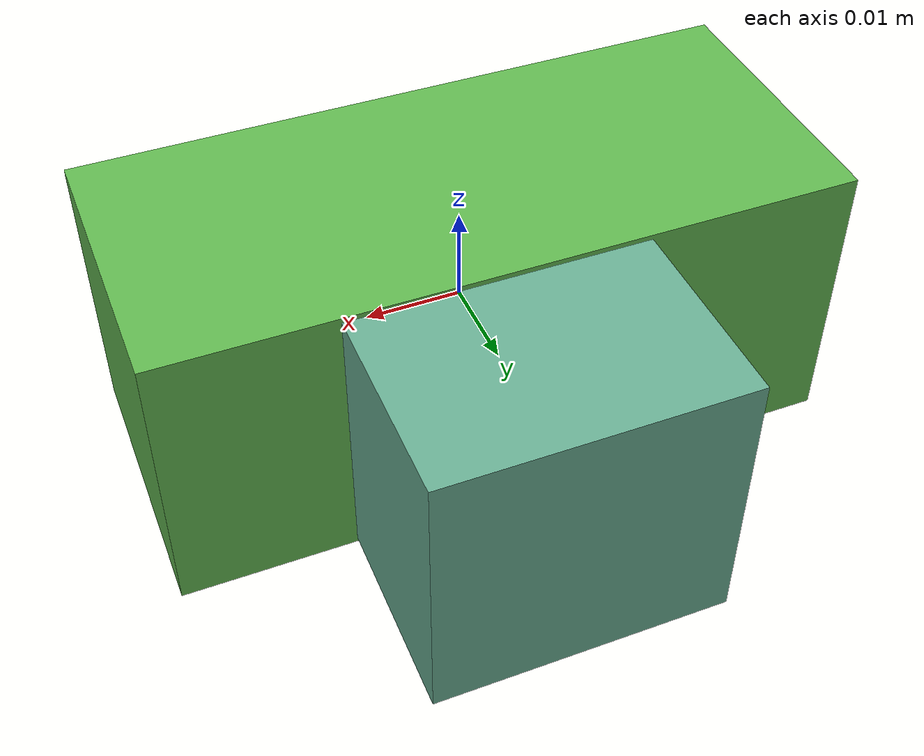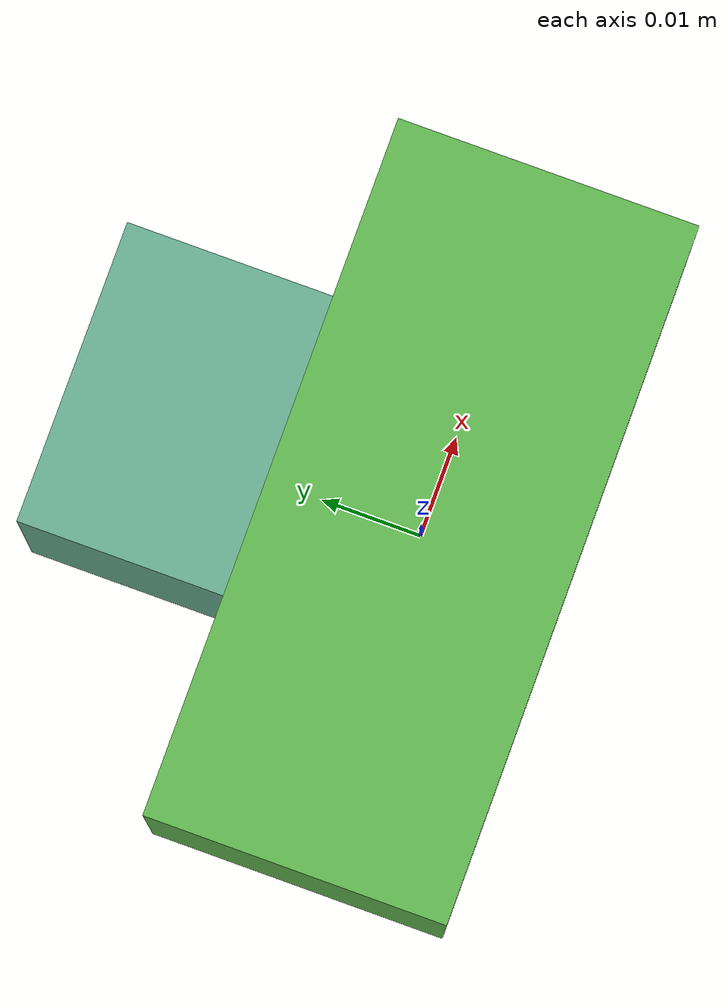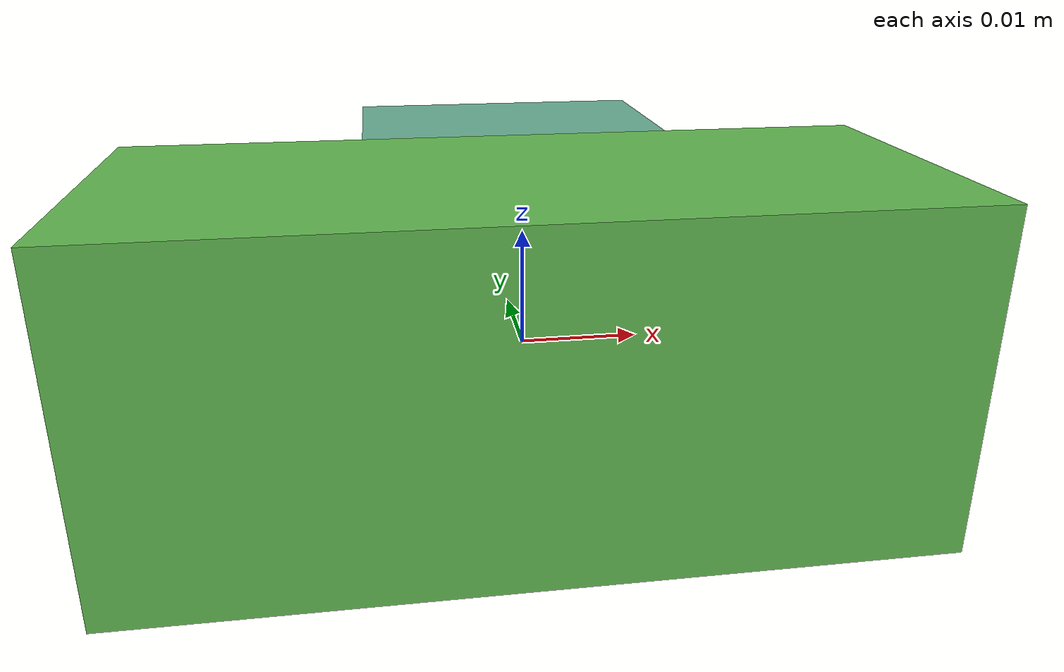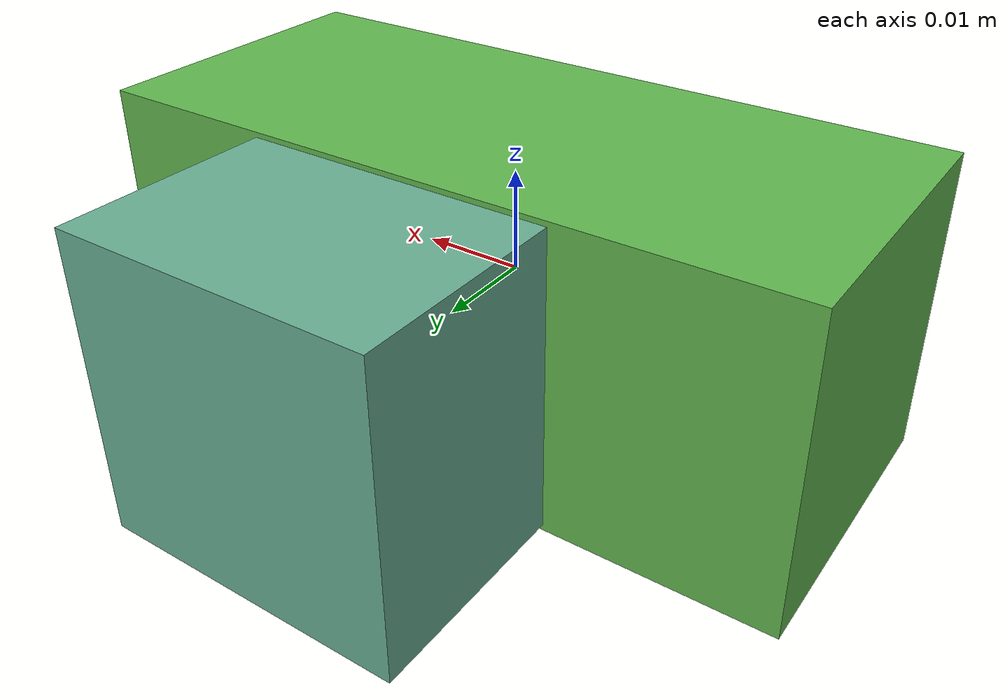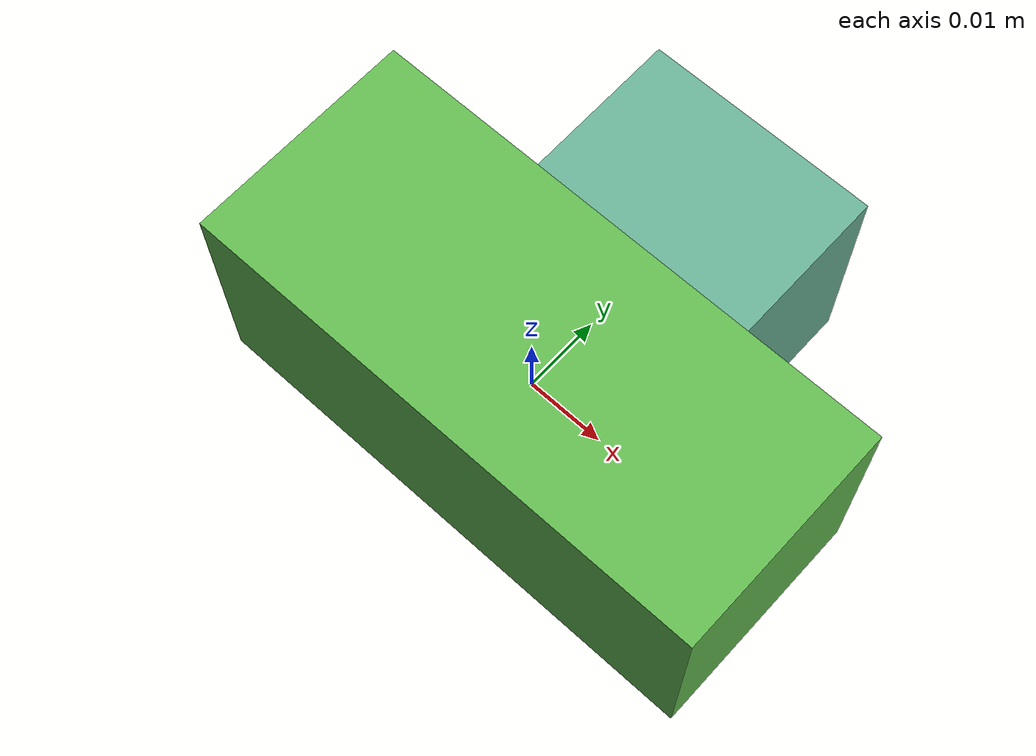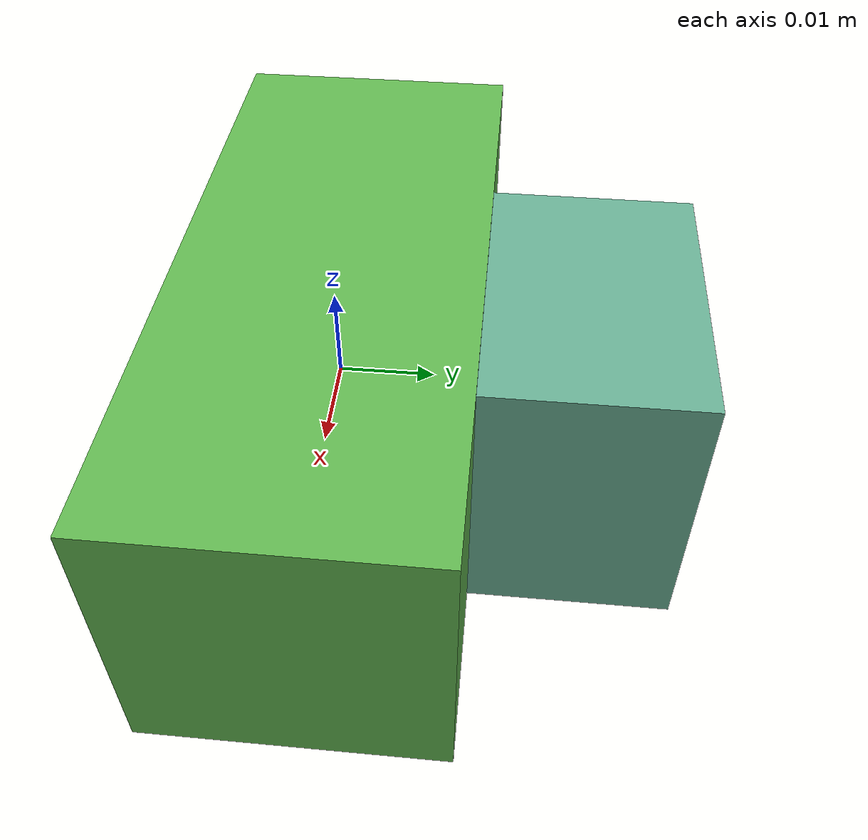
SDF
<sdf version="1.4"><world name="default"><model name="object0"><link name="link1"><pose>0 0 0 0 0 0</pose><inertial><pose>0 0 0 0 0 0</pose><mass>0.037646167311003</mass><inertia><ixx>5.64692509665045e-06</ixx><ixy>0</ixy><iyy>1.807078336892909e-05</iyy><ixz>0</ixz><iyz>0</iyz><izz>1.807078336892909e-05</izz></inertia></inertial><visual name="link1_visual"><pose>0 0  0 0 0 0</pose><geometry><box><size>0.06971512465000557 0.03 0.03</size></box></geometry><material><diffuse>0.38289840612849396 0.7194547492442637 0.3156238854503936 1</diffuse></material></visual><collision><pose>0 0  0 0 0 0</pose><geometry><box><size>0.06971512465000557 0.03 0.03</size></box></geometry></collision></link><link name="link2"><pose>0.001982078502425176 0.010713686522026932 0 0 0 0</pose><inertial><pose>0 0 0 0 0 0</pose><mass>0.026813571906503415</mass><inertia><ixx>7.3884696116043085e-06</ixx><ixy>0</ixy><iyy>3.890202390768537e-06</iyy><ixz>0</ixz><iyz>0</iyz><izz>7.520303006811284e-06</izz></inertia></inertial><visual name="link2_visual"><pose>0 0  0 0 0 0</pose><geometry><box><size>0.03 0.049654762789821144 0.028999999999999998</size></box></geometry><material><diffuse>0.4110344484874619 0.685186714987065 0.5782639192623229 1</diffuse></material></visual><collision><pose>0 0  0 0 0 0</pose><geometry><box><size>0.03 0.049654762789821144 0.028999999999999998</size></box></geometry></collision></link><joint name="link_joint_0" type="fixed"><parent>link1</parent><child>link2</child><pose>0 0 0 0 0 0</pose><axis><xyz>0 0 1</xyz></axis></joint></model></world></sdf>
